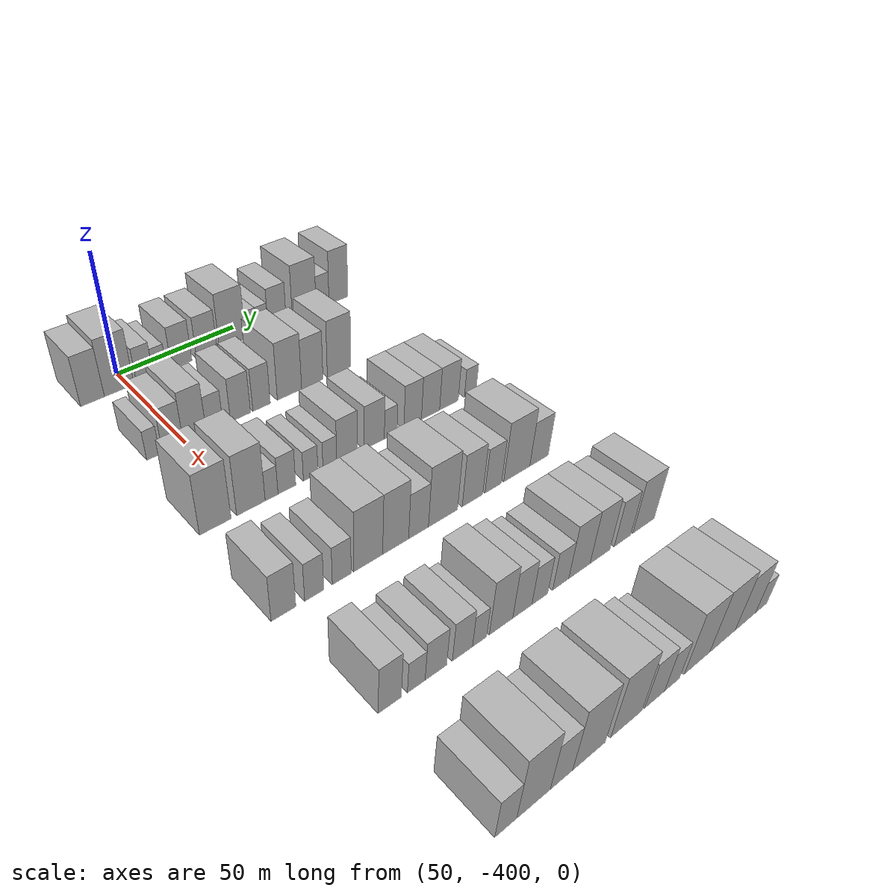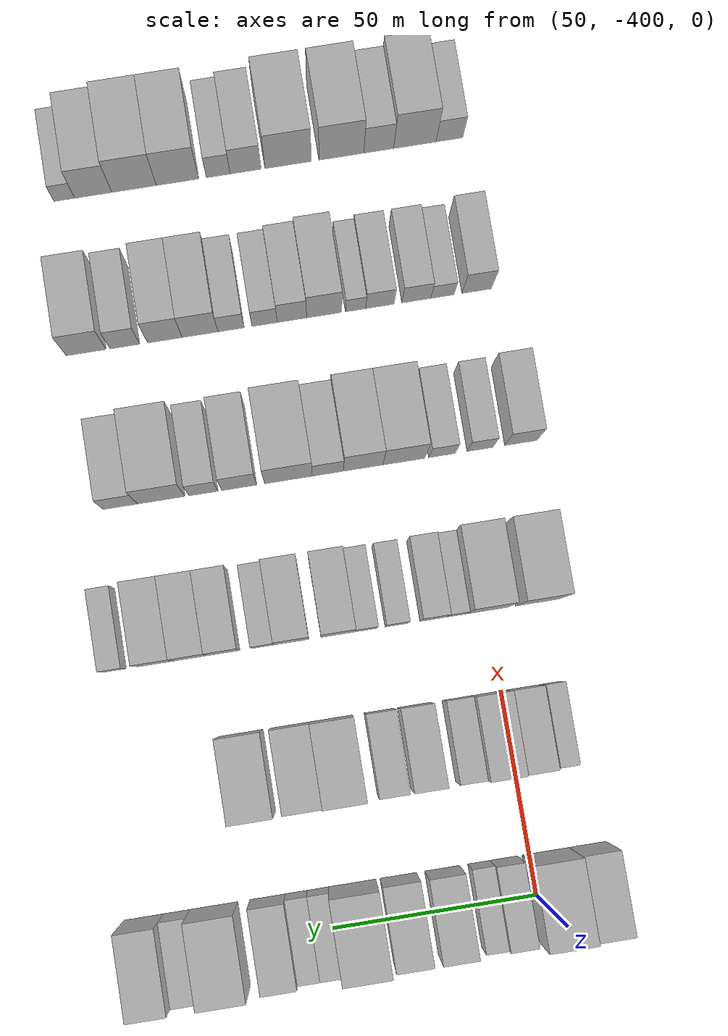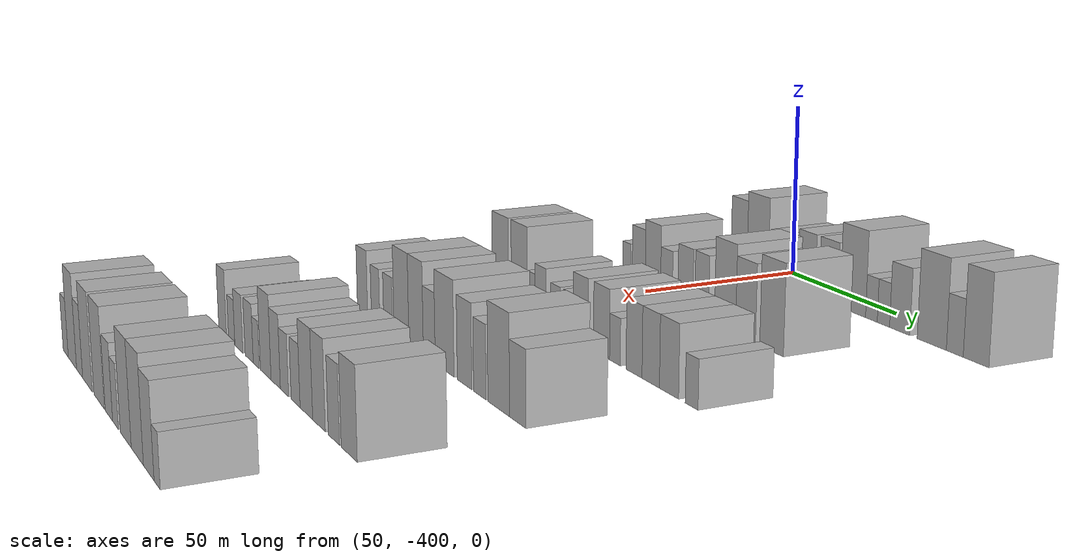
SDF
<sdf version="1.6">
 <world name="default">
  <model name="building_26">
   <static>1</static>
   <pose>50.0000 -414.3899 0 0.000000 0.000000 0.000000</pose>
   <link name="link">
    <pose>0 0 10.50 0 0 0</pose>
    <collision name="collision"><geometry><box><size>20.0000 9.1056 21.0000</size></box></geometry></collision>
    <visual name="visual">
     <cast_shadows>0</cast_shadows>
     <geometry><box><size>20.0000 9.1056 21.0000</size></box></geometry>
     <material>
      <script>
       <uri>model://HANNAS_wall/materials/scripts</uri>
       <uri>model://HANNAS_wall/materials/textures</uri>
       <name>vrc/HANNAS_wall</name>
      </script>
     </material>
    </visual>
   </link>
  </model>
  <model name="building_27">
   <static>1</static>
   <pose>50.0000 -404.0000 0 0.000000 0.000000 0.000000</pose>
   <link name="link">
    <pose>0 0 12.00 0 0 0</pose>
    <collision name="collision"><geometry><box><size>20.0000 11.6743 24.0000</size></box></geometry></collision>
    <visual name="visual">
     <cast_shadows>0</cast_shadows>
     <geometry><box><size>20.0000 11.6743 24.0000</size></box></geometry>
     <material>
      <script>
       <uri>model://HANNAS_wall/materials/scripts</uri>
       <uri>model://HANNAS_wall/materials/textures</uri>
       <name>vrc/HANNAS_wall</name>
      </script>
     </material>
    </visual>
   </link>
  </model>
  <model name="building_28">
   <static>1</static>
   <pose>50.0000 -393.7379 0 0.000000 0.000000 0.000000</pose>
   <link name="link">
    <pose>0 0 7.50 0 0 0</pose>
    <collision name="collision"><geometry><box><size>20.0000 6.8498 15.0000</size></box></geometry></collision>
    <visual name="visual">
     <cast_shadows>0</cast_shadows>
     <geometry><box><size>20.0000 6.8498 15.0000</size></box></geometry>
     <material>
      <script>
       <uri>model://HANNAS_wall/materials/scripts</uri>
       <uri>model://HANNAS_wall/materials/textures</uri>
       <name>vrc/HANNAS_wall</name>
      </script>
     </material>
    </visual>
   </link>
  </model>
  <model name="building_29">
   <static>1</static>
   <pose>50.0000 -387.5442 0 0.000000 0.000000 0.000000</pose>
   <link name="link">
    <pose>0 0 6.00 0 0 0</pose>
    <collision name="collision"><geometry><box><size>20.0000 5.5376 12.0000</size></box></geometry></collision>
    <visual name="visual">
     <cast_shadows>0</cast_shadows>
     <geometry><box><size>20.0000 5.5376 12.0000</size></box></geometry>
     <material>
      <script>
       <uri>model://HANNAS_wall/materials/scripts</uri>
       <uri>model://HANNAS_wall/materials/textures</uri>
       <name>vrc/HANNAS_wall</name>
      </script>
     </material>
    </visual>
   </link>
  </model>
  <model name="building_30">
   <static>1</static>
   <pose>50.0000 -378.4547 0 0.000000 0.000000 0.000000</pose>
   <link name="link">
    <pose>0 0 9.00 0 0 0</pose>
    <collision name="collision"><geometry><box><size>20.0000 8.6414 18.0000</size></box></geometry></collision>
    <visual name="visual">
     <cast_shadows>0</cast_shadows>
     <geometry><box><size>20.0000 8.6414 18.0000</size></box></geometry>
     <material>
      <script>
       <uri>model://HANNAS_wall/materials/scripts</uri>
       <uri>model://HANNAS_wall/materials/textures</uri>
       <name>vrc/HANNAS_wall</name>
      </script>
     </material>
    </visual>
   </link>
  </model>
  <model name="building_31">
   <static>1</static>
   <pose>50.0000 -367.6351 0 0.000000 0.000000 0.000000</pose>
   <link name="link">
    <pose>0 0 9.00 0 0 0</pose>
    <collision name="collision"><geometry><box><size>20.0000 8.9978 18.0000</size></box></geometry></collision>
    <visual name="visual">
     <cast_shadows>0</cast_shadows>
     <geometry><box><size>20.0000 8.9978 18.0000</size></box></geometry>
     <material>
      <script>
       <uri>model://HANNAS_wall/materials/scripts</uri>
       <uri>model://HANNAS_wall/materials/textures</uri>
       <name>vrc/HANNAS_wall</name>
      </script>
     </material>
    </visual>
   </link>
  </model>
  <model name="building_32">
   <static>1</static>
   <pose>50.0000 -356.2664 0 0.000000 0.000000 0.000000</pose>
   <link name="link">
    <pose>0 0 12.00 0 0 0</pose>
    <collision name="collision"><geometry><box><size>20.0000 11.7396 24.0000</size></box></geometry></collision>
    <visual name="visual">
     <cast_shadows>0</cast_shadows>
     <geometry><box><size>20.0000 11.7396 24.0000</size></box></geometry>
     <material>
      <script>
       <uri>model://HANNAS_wall/materials/scripts</uri>
       <uri>model://HANNAS_wall/materials/textures</uri>
       <name>vrc/HANNAS_wall</name>
      </script>
     </material>
    </visual>
   </link>
  </model>
  <model name="building_33">
   <static>1</static>
   <pose>50.0000 -347.7952 0 0.000000 0.000000 0.000000</pose>
   <link name="link">
    <pose>0 0 6.00 0 0 0</pose>
    <collision name="collision"><geometry><box><size>20.0000 5.2028 12.0000</size></box></geometry></collision>
    <visual name="visual">
     <cast_shadows>0</cast_shadows>
     <geometry><box><size>20.0000 5.2028 12.0000</size></box></geometry>
     <material>
      <script>
       <uri>model://HANNAS_wall/materials/scripts</uri>
       <uri>model://HANNAS_wall/materials/textures</uri>
       <name>vrc/HANNAS_wall</name>
      </script>
     </material>
    </visual>
   </link>
  </model>
  <model name="building_34">
   <static>1</static>
   <pose>50.0000 -342.5135 0 0.000000 0.000000 0.000000</pose>
   <link name="link">
    <pose>0 0 6.00 0 0 0</pose>
    <collision name="collision"><geometry><box><size>20.0000 5.3606 12.0000</size></box></geometry></collision>
    <visual name="visual">
     <cast_shadows>0</cast_shadows>
     <geometry><box><size>20.0000 5.3606 12.0000</size></box></geometry>
     <material>
      <script>
       <uri>model://HANNAS_wall/materials/scripts</uri>
       <uri>model://HANNAS_wall/materials/textures</uri>
       <name>vrc/HANNAS_wall</name>
      </script>
     </material>
    </visual>
   </link>
  </model>
  <model name="building_35">
   <static>1</static>
   <pose>50.0000 -335.5263 0 0.000000 0.000000 0.000000</pose>
   <link name="link">
    <pose>0 0 9.00 0 0 0</pose>
    <collision name="collision"><geometry><box><size>20.0000 8.6137 18.0000</size></box></geometry></collision>
    <visual name="visual">
     <cast_shadows>0</cast_shadows>
     <geometry><box><size>20.0000 8.6137 18.0000</size></box></geometry>
     <material>
      <script>
       <uri>model://HANNAS_wall/materials/scripts</uri>
       <uri>model://HANNAS_wall/materials/textures</uri>
       <name>vrc/HANNAS_wall</name>
      </script>
     </material>
    </visual>
   </link>
  </model>
  <model name="building_36">
   <static>1</static>
   <pose>50.0000 -322.3569 0 0.000000 0.000000 0.000000</pose>
   <link name="link">
    <pose>0 0 12.00 0 0 0</pose>
    <collision name="collision"><geometry><box><size>20.0000 11.7252 24.0000</size></box></geometry></collision>
    <visual name="visual">
     <cast_shadows>0</cast_shadows>
     <geometry><box><size>20.0000 11.7252 24.0000</size></box></geometry>
     <material>
      <script>
       <uri>model://HANNAS_wall/materials/scripts</uri>
       <uri>model://HANNAS_wall/materials/textures</uri>
       <name>vrc/HANNAS_wall</name>
      </script>
     </material>
    </visual>
   </link>
  </model>
  <model name="building_37">
   <static>1</static>
   <pose>50.0000 -313.2357 0 0.000000 0.000000 0.000000</pose>
   <link name="link">
    <pose>0 0 7.50 0 0 0</pose>
    <collision name="collision"><geometry><box><size>20.0000 6.5171 15.0000</size></box></geometry></collision>
    <visual name="visual">
     <cast_shadows>0</cast_shadows>
     <geometry><box><size>20.0000 6.5171 15.0000</size></box></geometry>
     <material>
      <script>
       <uri>model://HANNAS_wall/materials/scripts</uri>
       <uri>model://HANNAS_wall/materials/textures</uri>
       <name>vrc/HANNAS_wall</name>
      </script>
     </material>
    </visual>
   </link>
  </model>
  <model name="building_38">
   <static>1</static>
   <pose>50.0000 -305.1698 0 0.000000 0.000000 0.000000</pose>
   <link name="link">
    <pose>0 0 12.00 0 0 0</pose>
    <collision name="collision"><geometry><box><size>20.0000 9.6145 24.0000</size></box></geometry></collision>
    <visual name="visual">
     <cast_shadows>0</cast_shadows>
     <geometry><box><size>20.0000 9.6145 24.0000</size></box></geometry>
     <material>
      <script>
       <uri>model://HANNAS_wall/materials/scripts</uri>
       <uri>model://HANNAS_wall/materials/textures</uri>
       <name>vrc/HANNAS_wall</name>
      </script>
     </material>
    </visual>
   </link>
  </model>
  <model name="building_156">
   <static>1</static>
   <pose>90.0000 -411.9326 0 0.000000 0.000000 0.000000</pose>
   <link name="link">
    <pose>0 0 6.00 0 0 0</pose>
    <collision name="collision"><geometry><box><size>20.0000 4.8075 12.0000</size></box></geometry></collision>
    <visual name="visual">
     <cast_shadows>0</cast_shadows>
     <geometry><box><size>20.0000 4.8075 12.0000</size></box></geometry>
     <material>
      <script>
       <uri>model://HANNAS_wall/materials/scripts</uri>
       <uri>model://HANNAS_wall/materials/textures</uri>
       <name>vrc/HANNAS_wall</name>
      </script>
     </material>
    </visual>
   </link>
  </model>
  <model name="building_157">
   <static>1</static>
   <pose>90.0000 -404.6065 0 0.000000 0.000000 0.000000</pose>
   <link name="link">
    <pose>0 0 9.00 0 0 0</pose>
    <collision name="collision"><geometry><box><size>20.0000 7.8446 18.0000</size></box></geometry></collision>
    <visual name="visual">
     <cast_shadows>0</cast_shadows>
     <geometry><box><size>20.0000 7.8446 18.0000</size></box></geometry>
     <material>
      <script>
       <uri>model://HANNAS_wall/materials/scripts</uri>
       <uri>model://HANNAS_wall/materials/textures</uri>
       <name>vrc/HANNAS_wall</name>
      </script>
     </material>
    </visual>
   </link>
  </model>
  <model name="building_158">
   <static>1</static>
   <pose>90.0000 -396.2514 0 0.000000 0.000000 0.000000</pose>
   <link name="link">
    <pose>0 0 10.50 0 0 0</pose>
    <collision name="collision"><geometry><box><size>20.0000 8.8657 21.0000</size></box></geometry></collision>
    <visual name="visual">
     <cast_shadows>0</cast_shadows>
     <geometry><box><size>20.0000 8.8657 21.0000</size></box></geometry>
     <material>
      <script>
       <uri>model://HANNAS_wall/materials/scripts</uri>
       <uri>model://HANNAS_wall/materials/textures</uri>
       <name>vrc/HANNAS_wall</name>
      </script>
     </material>
    </visual>
   </link>
  </model>
  <model name="building_159">
   <static>1</static>
   <pose>90.0000 -388.4987 0 0.000000 0.000000 0.000000</pose>
   <link name="link">
    <pose>0 0 7.50 0 0 0</pose>
    <collision name="collision"><geometry><box><size>20.0000 6.6397 15.0000</size></box></geometry></collision>
    <visual name="visual">
     <cast_shadows>0</cast_shadows>
     <geometry><box><size>20.0000 6.6397 15.0000</size></box></geometry>
     <material>
      <script>
       <uri>model://HANNAS_wall/materials/scripts</uri>
       <uri>model://HANNAS_wall/materials/textures</uri>
       <name>vrc/HANNAS_wall</name>
      </script>
     </material>
    </visual>
   </link>
  </model>
  <model name="building_160">
   <static>1</static>
   <pose>90.0000 -378.1217 0 0.000000 0.000000 0.000000</pose>
   <link name="link">
    <pose>0 0 9.00 0 0 0</pose>
    <collision name="collision"><geometry><box><size>20.0000 8.1143 18.0000</size></box></geometry></collision>
    <visual name="visual">
     <cast_shadows>0</cast_shadows>
     <geometry><box><size>20.0000 8.1143 18.0000</size></box></geometry>
     <material>
      <script>
       <uri>model://HANNAS_wall/materials/scripts</uri>
       <uri>model://HANNAS_wall/materials/textures</uri>
       <name>vrc/HANNAS_wall</name>
      </script>
     </material>
    </visual>
   </link>
  </model>
  <model name="building_161">
   <static>1</static>
   <pose>90.0000 -369.4070 0 0.000000 0.000000 0.000000</pose>
   <link name="link">
    <pose>0 0 9.00 0 0 0</pose>
    <collision name="collision"><geometry><box><size>20.0000 7.3151 18.0000</size></box></geometry></collision>
    <visual name="visual">
     <cast_shadows>0</cast_shadows>
     <geometry><box><size>20.0000 7.3151 18.0000</size></box></geometry>
     <material>
      <script>
       <uri>model://HANNAS_wall/materials/scripts</uri>
       <uri>model://HANNAS_wall/materials/textures</uri>
       <name>vrc/HANNAS_wall</name>
      </script>
     </material>
    </visual>
   </link>
  </model>
  <model name="building_162">
   <static>1</static>
   <pose>90.0000 -357.4786 0 0.000000 0.000000 0.000000</pose>
   <link name="link">
    <pose>0 0 12.00 0 0 0</pose>
    <collision name="collision"><geometry><box><size>20.0000 10.5418 24.0000</size></box></geometry></collision>
    <visual name="visual">
     <cast_shadows>0</cast_shadows>
     <geometry><box><size>20.0000 10.5418 24.0000</size></box></geometry>
     <material>
      <script>
       <uri>model://HANNAS_wall/materials/scripts</uri>
       <uri>model://HANNAS_wall/materials/textures</uri>
       <name>vrc/HANNAS_wall</name>
      </script>
     </material>
    </visual>
   </link>
  </model>
  <model name="building_163">
   <static>1</static>
   <pose>90.0000 -347.4380 0 0.000000 0.000000 0.000000</pose>
   <link name="link">
    <pose>0 0 10.50 0 0 0</pose>
    <collision name="collision"><geometry><box><size>20.0000 9.5393 21.0000</size></box></geometry></collision>
    <visual name="visual">
     <cast_shadows>0</cast_shadows>
     <geometry><box><size>20.0000 9.5393 21.0000</size></box></geometry>
     <material>
      <script>
       <uri>model://HANNAS_wall/materials/scripts</uri>
       <uri>model://HANNAS_wall/materials/textures</uri>
       <name>vrc/HANNAS_wall</name>
      </script>
     </material>
    </visual>
   </link>
  </model>
  <model name="building_164">
   <static>1</static>
   <pose>90.0000 -335.2580 0 0.000000 0.000000 0.000000</pose>
   <link name="link">
    <pose>0 0 12.00 0 0 0</pose>
    <collision name="collision"><geometry><box><size>20.0000 10.8207 24.0000</size></box></geometry></collision>
    <visual name="visual">
     <cast_shadows>0</cast_shadows>
     <geometry><box><size>20.0000 10.8207 24.0000</size></box></geometry>
     <material>
      <script>
       <uri>model://HANNAS_wall/materials/scripts</uri>
       <uri>model://HANNAS_wall/materials/textures</uri>
       <name>vrc/HANNAS_wall</name>
      </script>
     </material>
    </visual>
   </link>
  </model>
  <model name="building_285">
   <static>1</static>
   <pose>130.0000 -412.5814 0 0.000000 0.000000 0.000000</pose>
   <link name="link">
    <pose>0 0 12.00 0 0 0</pose>
    <collision name="collision"><geometry><box><size>20.0000 11.0672 24.0000</size></box></geometry></collision>
    <visual name="visual">
     <cast_shadows>0</cast_shadows>
     <geometry><box><size>20.0000 11.0672 24.0000</size></box></geometry>
     <material>
      <script>
       <uri>model://HANNAS_wall/materials/scripts</uri>
       <uri>model://HANNAS_wall/materials/textures</uri>
       <name>vrc/HANNAS_wall</name>
      </script>
     </material>
    </visual>
   </link>
  </model>
  <model name="building_286">
   <static>1</static>
   <pose>130.0000 -399.8257 0 0.000000 0.000000 0.000000</pose>
   <link name="link">
    <pose>0 0 12.00 0 0 0</pose>
    <collision name="collision"><geometry><box><size>20.0000 10.4442 24.0000</size></box></geometry></collision>
    <visual name="visual">
     <cast_shadows>0</cast_shadows>
     <geometry><box><size>20.0000 10.4442 24.0000</size></box></geometry>
     <material>
      <script>
       <uri>model://HANNAS_wall/materials/scripts</uri>
       <uri>model://HANNAS_wall/materials/textures</uri>
       <name>vrc/HANNAS_wall</name>
      </script>
     </material>
    </visual>
   </link>
  </model>
  <model name="building_287">
   <static>1</static>
   <pose>130.0000 -392.1917 0 0.000000 0.000000 0.000000</pose>
   <link name="link">
    <pose>0 0 6.00 0 0 0</pose>
    <collision name="collision"><geometry><box><size>20.0000 4.8238 12.0000</size></box></geometry></collision>
    <visual name="visual">
     <cast_shadows>0</cast_shadows>
     <geometry><box><size>20.0000 4.8238 12.0000</size></box></geometry>
     <material>
      <script>
       <uri>model://HANNAS_wall/materials/scripts</uri>
       <uri>model://HANNAS_wall/materials/textures</uri>
       <name>vrc/HANNAS_wall</name>
      </script>
     </material>
    </visual>
   </link>
  </model>
  <model name="building_288">
   <static>1</static>
   <pose>130.0000 -386.3967 0 0.000000 0.000000 0.000000</pose>
   <link name="link">
    <pose>0 0 7.50 0 0 0</pose>
    <collision name="collision"><geometry><box><size>20.0000 6.7661 15.0000</size></box></geometry></collision>
    <visual name="visual">
     <cast_shadows>0</cast_shadows>
     <geometry><box><size>20.0000 6.7661 15.0000</size></box></geometry>
     <material>
      <script>
       <uri>model://HANNAS_wall/materials/scripts</uri>
       <uri>model://HANNAS_wall/materials/textures</uri>
       <name>vrc/HANNAS_wall</name>
      </script>
     </material>
    </visual>
   </link>
  </model>
  <model name="building_289">
   <static>1</static>
   <pose>130.0000 -377.1480 0 0.000000 0.000000 0.000000</pose>
   <link name="link">
    <pose>0 0 6.00 0 0 0</pose>
    <collision name="collision"><geometry><box><size>20.0000 5.7313 12.0000</size></box></geometry></collision>
    <visual name="visual">
     <cast_shadows>0</cast_shadows>
     <geometry><box><size>20.0000 5.7313 12.0000</size></box></geometry>
     <material>
      <script>
       <uri>model://HANNAS_wall/materials/scripts</uri>
       <uri>model://HANNAS_wall/materials/textures</uri>
       <name>vrc/HANNAS_wall</name>
      </script>
     </material>
    </visual>
   </link>
  </model>
  <model name="building_290">
   <static>1</static>
   <pose>130.0000 -369.4951 0 0.000000 0.000000 0.000000</pose>
   <link name="link">
    <pose>0 0 6.00 0 0 0</pose>
    <collision name="collision"><geometry><box><size>20.0000 5.5746 12.0000</size></box></geometry></collision>
    <visual name="visual">
     <cast_shadows>0</cast_shadows>
     <geometry><box><size>20.0000 5.5746 12.0000</size></box></geometry>
     <material>
      <script>
       <uri>model://HANNAS_wall/materials/scripts</uri>
       <uri>model://HANNAS_wall/materials/textures</uri>
       <name>vrc/HANNAS_wall</name>
      </script>
     </material>
    </visual>
   </link>
  </model>
  <model name="building_291">
   <static>1</static>
   <pose>130.0000 -362.4866 0 0.000000 0.000000 0.000000</pose>
   <link name="link">
    <pose>0 0 9.00 0 0 0</pose>
    <collision name="collision"><geometry><box><size>20.0000 8.4424 18.0000</size></box></geometry></collision>
    <visual name="visual">
     <cast_shadows>0</cast_shadows>
     <geometry><box><size>20.0000 8.4424 18.0000</size></box></geometry>
     <material>
      <script>
       <uri>model://HANNAS_wall/materials/scripts</uri>
       <uri>model://HANNAS_wall/materials/textures</uri>
       <name>vrc/HANNAS_wall</name>
      </script>
     </material>
    </visual>
   </link>
  </model>
  <model name="building_292">
   <static>1</static>
   <pose>130.0000 -350.9627 0 0.000000 0.000000 0.000000</pose>
   <link name="link">
    <pose>0 0 9.00 0 0 0</pose>
    <collision name="collision"><geometry><box><size>20.0000 8.6053 18.0000</size></box></geometry></collision>
    <visual name="visual">
     <cast_shadows>0</cast_shadows>
     <geometry><box><size>20.0000 8.6053 18.0000</size></box></geometry>
     <material>
      <script>
       <uri>model://HANNAS_wall/materials/scripts</uri>
       <uri>model://HANNAS_wall/materials/textures</uri>
       <name>vrc/HANNAS_wall</name>
      </script>
     </material>
    </visual>
   </link>
  </model>
  <model name="building_293">
   <static>1</static>
   <pose>130.0000 -343.8487 0 0.000000 0.000000 0.000000</pose>
   <link name="link">
    <pose>0 0 6.00 0 0 0</pose>
    <collision name="collision"><geometry><box><size>20.0000 5.6227 12.0000</size></box></geometry></collision>
    <visual name="visual">
     <cast_shadows>0</cast_shadows>
     <geometry><box><size>20.0000 5.6227 12.0000</size></box></geometry>
     <material>
      <script>
       <uri>model://HANNAS_wall/materials/scripts</uri>
       <uri>model://HANNAS_wall/materials/textures</uri>
       <name>vrc/HANNAS_wall</name>
      </script>
     </material>
    </visual>
   </link>
  </model>
  <model name="building_294">
   <static>1</static>
   <pose>130.0000 -334.0466 0 0.000000 0.000000 0.000000</pose>
   <link name="link">
    <pose>0 0 9.00 0 0 0</pose>
    <collision name="collision"><geometry><box><size>20.0000 7.9815 18.0000</size></box></geometry></collision>
    <visual name="visual">
     <cast_shadows>0</cast_shadows>
     <geometry><box><size>20.0000 7.9815 18.0000</size></box></geometry>
     <material>
      <script>
       <uri>model://HANNAS_wall/materials/scripts</uri>
       <uri>model://HANNAS_wall/materials/textures</uri>
       <name>vrc/HANNAS_wall</name>
      </script>
     </material>
    </visual>
   </link>
  </model>
  <model name="building_295">
   <static>1</static>
   <pose>130.0000 -325.8316 0 0.000000 0.000000 0.000000</pose>
   <link name="link">
    <pose>0 0 9.00 0 0 0</pose>
    <collision name="collision"><geometry><box><size>20.0000 8.4483 18.0000</size></box></geometry></collision>
    <visual name="visual">
     <cast_shadows>0</cast_shadows>
     <geometry><box><size>20.0000 8.4483 18.0000</size></box></geometry>
     <material>
      <script>
       <uri>model://HANNAS_wall/materials/scripts</uri>
       <uri>model://HANNAS_wall/materials/textures</uri>
       <name>vrc/HANNAS_wall</name>
      </script>
     </material>
    </visual>
   </link>
  </model>
  <model name="building_296">
   <static>1</static>
   <pose>130.0000 -317.1540 0 0.000000 0.000000 0.000000</pose>
   <link name="link">
    <pose>0 0 9.00 0 0 0</pose>
    <collision name="collision"><geometry><box><size>20.0000 8.9070 18.0000</size></box></geometry></collision>
    <visual name="visual">
     <cast_shadows>0</cast_shadows>
     <geometry><box><size>20.0000 8.9070 18.0000</size></box></geometry>
     <material>
      <script>
       <uri>model://HANNAS_wall/materials/scripts</uri>
       <uri>model://HANNAS_wall/materials/textures</uri>
       <name>vrc/HANNAS_wall</name>
      </script>
     </material>
    </visual>
   </link>
  </model>
  <model name="building_297">
   <static>1</static>
   <pose>130.0000 -306.8457 0 0.000000 0.000000 0.000000</pose>
   <link name="link">
    <pose>0 0 6.00 0 0 0</pose>
    <collision name="collision"><geometry><box><size>20.0000 5.7095 12.0000</size></box></geometry></collision>
    <visual name="visual">
     <cast_shadows>0</cast_shadows>
     <geometry><box><size>20.0000 5.7095 12.0000</size></box></geometry>
     <material>
      <script>
       <uri>model://HANNAS_wall/materials/scripts</uri>
       <uri>model://HANNAS_wall/materials/textures</uri>
       <name>vrc/HANNAS_wall</name>
      </script>
     </material>
    </visual>
   </link>
  </model>
  <model name="building_426">
   <static>1</static>
   <pose>170.0000 -415.3069 0 0.000000 0.000000 0.000000</pose>
   <link name="link">
    <pose>0 0 9.00 0 0 0</pose>
    <collision name="collision"><geometry><box><size>20.0000 8.1933 18.0000</size></box></geometry></collision>
    <visual name="visual">
     <cast_shadows>0</cast_shadows>
     <geometry><box><size>20.0000 8.1933 18.0000</size></box></geometry>
     <material>
      <script>
       <uri>model://HANNAS_wall/materials/scripts</uri>
       <uri>model://HANNAS_wall/materials/textures</uri>
       <name>vrc/HANNAS_wall</name>
      </script>
     </material>
    </visual>
   </link>
  </model>
  <model name="building_427">
   <static>1</static>
   <pose>170.0000 -404.9298 0 0.000000 0.000000 0.000000</pose>
   <link name="link">
    <pose>0 0 7.50 0 0 0</pose>
    <collision name="collision"><geometry><box><size>20.0000 6.5609 15.0000</size></box></geometry></collision>
    <visual name="visual">
     <cast_shadows>0</cast_shadows>
     <geometry><box><size>20.0000 6.5609 15.0000</size></box></geometry>
     <material>
      <script>
       <uri>model://HANNAS_wall/materials/scripts</uri>
       <uri>model://HANNAS_wall/materials/textures</uri>
       <name>vrc/HANNAS_wall</name>
      </script>
     </material>
    </visual>
   </link>
  </model>
  <model name="building_428">
   <static>1</static>
   <pose>170.0000 -395.2957 0 0.000000 0.000000 0.000000</pose>
   <link name="link">
    <pose>0 0 7.50 0 0 0</pose>
    <collision name="collision"><geometry><box><size>20.0000 6.7074 15.0000</size></box></geometry></collision>
    <visual name="visual">
     <cast_shadows>0</cast_shadows>
     <geometry><box><size>20.0000 6.7074 15.0000</size></box></geometry>
     <material>
      <script>
       <uri>model://HANNAS_wall/materials/scripts</uri>
       <uri>model://HANNAS_wall/materials/textures</uri>
       <name>vrc/HANNAS_wall</name>
      </script>
     </material>
    </visual>
   </link>
  </model>
  <model name="building_429">
   <static>1</static>
   <pose>170.0000 -385.6176 0 0.000000 0.000000 0.000000</pose>
   <link name="link">
    <pose>0 0 12.00 0 0 0</pose>
    <collision name="collision"><geometry><box><size>20.0000 10.6488 24.0000</size></box></geometry></collision>
    <visual name="visual">
     <cast_shadows>0</cast_shadows>
     <geometry><box><size>20.0000 10.6488 24.0000</size></box></geometry>
     <material>
      <script>
       <uri>model://HANNAS_wall/materials/scripts</uri>
       <uri>model://HANNAS_wall/materials/textures</uri>
       <name>vrc/HANNAS_wall</name>
      </script>
     </material>
    </visual>
   </link>
  </model>
  <model name="building_430">
   <static>1</static>
   <pose>170.0000 -375.3055 0 0.000000 0.000000 0.000000</pose>
   <link name="link">
    <pose>0 0 12.00 0 0 0</pose>
    <collision name="collision"><geometry><box><size>20.0000 9.9753 24.0000</size></box></geometry></collision>
    <visual name="visual">
     <cast_shadows>0</cast_shadows>
     <geometry><box><size>20.0000 9.9753 24.0000</size></box></geometry>
     <material>
      <script>
       <uri>model://HANNAS_wall/materials/scripts</uri>
       <uri>model://HANNAS_wall/materials/textures</uri>
       <name>vrc/HANNAS_wall</name>
      </script>
     </material>
    </visual>
   </link>
  </model>
  <model name="building_431">
   <static>1</static>
   <pose>170.0000 -366.3891 0 0.000000 0.000000 0.000000</pose>
   <link name="link">
    <pose>0 0 9.00 0 0 0</pose>
    <collision name="collision"><geometry><box><size>20.0000 7.8576 18.0000</size></box></geometry></collision>
    <visual name="visual">
     <cast_shadows>0</cast_shadows>
     <geometry><box><size>20.0000 7.8576 18.0000</size></box></geometry>
     <material>
      <script>
       <uri>model://HANNAS_wall/materials/scripts</uri>
       <uri>model://HANNAS_wall/materials/textures</uri>
       <name>vrc/HANNAS_wall</name>
      </script>
     </material>
    </visual>
   </link>
  </model>
  <model name="building_432">
   <static>1</static>
   <pose>170.0000 -356.4742 0 0.000000 0.000000 0.000000</pose>
   <link name="link">
    <pose>0 0 12.00 0 0 0</pose>
    <collision name="collision"><geometry><box><size>20.0000 11.9720 24.0000</size></box></geometry></collision>
    <visual name="visual">
     <cast_shadows>0</cast_shadows>
     <geometry><box><size>20.0000 11.9720 24.0000</size></box></geometry>
     <material>
      <script>
       <uri>model://HANNAS_wall/materials/scripts</uri>
       <uri>model://HANNAS_wall/materials/textures</uri>
       <name>vrc/HANNAS_wall</name>
      </script>
     </material>
    </visual>
   </link>
  </model>
  <model name="building_433">
   <static>1</static>
   <pose>170.0000 -344.1083 0 0.000000 0.000000 0.000000</pose>
   <link name="link">
    <pose>0 0 10.50 0 0 0</pose>
    <collision name="collision"><geometry><box><size>20.0000 8.7598 21.0000</size></box></geometry></collision>
    <visual name="visual">
     <cast_shadows>0</cast_shadows>
     <geometry><box><size>20.0000 8.7598 21.0000</size></box></geometry>
     <material>
      <script>
       <uri>model://HANNAS_wall/materials/scripts</uri>
       <uri>model://HANNAS_wall/materials/textures</uri>
       <name>vrc/HANNAS_wall</name>
      </script>
     </material>
    </visual>
   </link>
  </model>
  <model name="building_434">
   <static>1</static>
   <pose>170.0000 -335.0778 0 0.000000 0.000000 0.000000</pose>
   <link name="link">
    <pose>0 0 9.00 0 0 0</pose>
    <collision name="collision"><geometry><box><size>20.0000 7.3012 18.0000</size></box></geometry></collision>
    <visual name="visual">
     <cast_shadows>0</cast_shadows>
     <geometry><box><size>20.0000 7.3012 18.0000</size></box></geometry>
     <material>
      <script>
       <uri>model://HANNAS_wall/materials/scripts</uri>
       <uri>model://HANNAS_wall/materials/textures</uri>
       <name>vrc/HANNAS_wall</name>
      </script>
     </material>
    </visual>
   </link>
  </model>
  <model name="building_435">
   <static>1</static>
   <pose>170.0000 -324.4492 0 0.000000 0.000000 0.000000</pose>
   <link name="link">
    <pose>0 0 12.00 0 0 0</pose>
    <collision name="collision"><geometry><box><size>20.0000 11.9560 24.0000</size></box></geometry></collision>
    <visual name="visual">
     <cast_shadows>0</cast_shadows>
     <geometry><box><size>20.0000 11.9560 24.0000</size></box></geometry>
     <material>
      <script>
       <uri>model://HANNAS_wall/materials/scripts</uri>
       <uri>model://HANNAS_wall/materials/textures</uri>
       <name>vrc/HANNAS_wall</name>
      </script>
     </material>
    </visual>
   </link>
  </model>
  <model name="building_436">
   <static>1</static>
   <pose>170.0000 -314.1354 0 0.000000 0.000000 0.000000</pose>
   <link name="link">
    <pose>0 0 9.00 0 0 0</pose>
    <collision name="collision"><geometry><box><size>20.0000 8.6716 18.0000</size></box></geometry></collision>
    <visual name="visual">
     <cast_shadows>0</cast_shadows>
     <geometry><box><size>20.0000 8.6716 18.0000</size></box></geometry>
     <material>
      <script>
       <uri>model://HANNAS_wall/materials/scripts</uri>
       <uri>model://HANNAS_wall/materials/textures</uri>
       <name>vrc/HANNAS_wall</name>
      </script>
     </material>
    </visual>
   </link>
  </model>
  <model name="building_569">
   <static>1</static>
   <pose>210.0000 -410.9122 0 0.000000 0.000000 0.000000</pose>
   <link name="link">
    <pose>0 0 9.00 0 0 0</pose>
    <collision name="collision"><geometry><box><size>20.0000 7.5175 18.0000</size></box></geometry></collision>
    <visual name="visual">
     <cast_shadows>0</cast_shadows>
     <geometry><box><size>20.0000 7.5175 18.0000</size></box></geometry>
     <material>
      <script>
       <uri>model://HANNAS_wall/materials/scripts</uri>
       <uri>model://HANNAS_wall/materials/textures</uri>
       <name>vrc/HANNAS_wall</name>
      </script>
     </material>
    </visual>
   </link>
  </model>
  <model name="building_570">
   <static>1</static>
   <pose>210.0000 -402.1767 0 0.000000 0.000000 0.000000</pose>
   <link name="link">
    <pose>0 0 6.00 0 0 0</pose>
    <collision name="collision"><geometry><box><size>20.0000 5.9536 12.0000</size></box></geometry></collision>
    <visual name="visual">
     <cast_shadows>0</cast_shadows>
     <geometry><box><size>20.0000 5.9536 12.0000</size></box></geometry>
     <material>
      <script>
       <uri>model://HANNAS_wall/materials/scripts</uri>
       <uri>model://HANNAS_wall/materials/textures</uri>
       <name>vrc/HANNAS_wall</name>
      </script>
     </material>
    </visual>
   </link>
  </model>
  <model name="building_571">
   <static>1</static>
   <pose>210.0000 -395.4804 0 0.000000 0.000000 0.000000</pose>
   <link name="link">
    <pose>0 0 7.50 0 0 0</pose>
    <collision name="collision"><geometry><box><size>20.0000 7.4391 15.0000</size></box></geometry></collision>
    <visual name="visual">
     <cast_shadows>0</cast_shadows>
     <geometry><box><size>20.0000 7.4391 15.0000</size></box></geometry>
     <material>
      <script>
       <uri>model://HANNAS_wall/materials/scripts</uri>
       <uri>model://HANNAS_wall/materials/textures</uri>
       <name>vrc/HANNAS_wall</name>
      </script>
     </material>
    </visual>
   </link>
  </model>
  <model name="building_572">
   <static>1</static>
   <pose>210.0000 -386.1468 0 0.000000 0.000000 0.000000</pose>
   <link name="link">
    <pose>0 0 7.50 0 0 0</pose>
    <collision name="collision"><geometry><box><size>20.0000 7.2280 15.0000</size></box></geometry></collision>
    <visual name="visual">
     <cast_shadows>0</cast_shadows>
     <geometry><box><size>20.0000 7.2280 15.0000</size></box></geometry>
     <material>
      <script>
       <uri>model://HANNAS_wall/materials/scripts</uri>
       <uri>model://HANNAS_wall/materials/textures</uri>
       <name>vrc/HANNAS_wall</name>
      </script>
     </material>
    </visual>
   </link>
  </model>
  <model name="building_573">
   <static>1</static>
   <pose>210.0000 -379.9415 0 0.000000 0.000000 0.000000</pose>
   <link name="link">
    <pose>0 0 6.00 0 0 0</pose>
    <collision name="collision"><geometry><box><size>20.0000 5.1826 12.0000</size></box></geometry></collision>
    <visual name="visual">
     <cast_shadows>0</cast_shadows>
     <geometry><box><size>20.0000 5.1826 12.0000</size></box></geometry>
     <material>
      <script>
       <uri>model://HANNAS_wall/materials/scripts</uri>
       <uri>model://HANNAS_wall/materials/textures</uri>
       <name>vrc/HANNAS_wall</name>
      </script>
     </material>
    </visual>
   </link>
  </model>
  <model name="building_574">
   <static>1</static>
   <pose>210.0000 -371.8974 0 0.000000 0.000000 0.000000</pose>
   <link name="link">
    <pose>0 0 10.50 0 0 0</pose>
    <collision name="collision"><geometry><box><size>20.0000 8.9056 21.0000</size></box></geometry></collision>
    <visual name="visual">
     <cast_shadows>0</cast_shadows>
     <geometry><box><size>20.0000 8.9056 21.0000</size></box></geometry>
     <material>
      <script>
       <uri>model://HANNAS_wall/materials/scripts</uri>
       <uri>model://HANNAS_wall/materials/textures</uri>
       <name>vrc/HANNAS_wall</name>
      </script>
     </material>
    </visual>
   </link>
  </model>
  <model name="building_575">
   <static>1</static>
   <pose>210.0000 -363.6965 0 0.000000 0.000000 0.000000</pose>
   <link name="link">
    <pose>0 0 9.00 0 0 0</pose>
    <collision name="collision"><geometry><box><size>20.0000 7.4961 18.0000</size></box></geometry></collision>
    <visual name="visual">
     <cast_shadows>0</cast_shadows>
     <geometry><box><size>20.0000 7.4961 18.0000</size></box></geometry>
     <material>
      <script>
       <uri>model://HANNAS_wall/materials/scripts</uri>
       <uri>model://HANNAS_wall/materials/textures</uri>
       <name>vrc/HANNAS_wall</name>
      </script>
     </material>
    </visual>
   </link>
  </model>
  <model name="building_576">
   <static>1</static>
   <pose>210.0000 -356.7411 0 0.000000 0.000000 0.000000</pose>
   <link name="link">
    <pose>0 0 7.50 0 0 0</pose>
    <collision name="collision"><geometry><box><size>20.0000 6.4147 15.0000</size></box></geometry></collision>
    <visual name="visual">
     <cast_shadows>0</cast_shadows>
     <geometry><box><size>20.0000 6.4147 15.0000</size></box></geometry>
     <material>
      <script>
       <uri>model://HANNAS_wall/materials/scripts</uri>
       <uri>model://HANNAS_wall/materials/textures</uri>
       <name>vrc/HANNAS_wall</name>
      </script>
     </material>
    </visual>
   </link>
  </model>
  <model name="building_577">
   <static>1</static>
   <pose>210.0000 -348.1874 0 0.000000 0.000000 0.000000</pose>
   <link name="link">
    <pose>0 0 7.50 0 0 0</pose>
    <collision name="collision"><geometry><box><size>20.0000 6.6928 15.0000</size></box></geometry></collision>
    <visual name="visual">
     <cast_shadows>0</cast_shadows>
     <geometry><box><size>20.0000 6.6928 15.0000</size></box></geometry>
     <material>
      <script>
       <uri>model://HANNAS_wall/materials/scripts</uri>
       <uri>model://HANNAS_wall/materials/textures</uri>
       <name>vrc/HANNAS_wall</name>
      </script>
     </material>
    </visual>
   </link>
  </model>
  <model name="building_578">
   <static>1</static>
   <pose>210.0000 -340.2743 0 0.000000 0.000000 0.000000</pose>
   <link name="link">
    <pose>0 0 10.50 0 0 0</pose>
    <collision name="collision"><geometry><box><size>20.0000 9.1333 21.0000</size></box></geometry></collision>
    <visual name="visual">
     <cast_shadows>0</cast_shadows>
     <geometry><box><size>20.0000 9.1333 21.0000</size></box></geometry>
     <material>
      <script>
       <uri>model://HANNAS_wall/materials/scripts</uri>
       <uri>model://HANNAS_wall/materials/textures</uri>
       <name>vrc/HANNAS_wall</name>
      </script>
     </material>
    </visual>
   </link>
  </model>
  <model name="building_579">
   <static>1</static>
   <pose>210.0000 -331.3085 0 0.000000 0.000000 0.000000</pose>
   <link name="link">
    <pose>0 0 10.50 0 0 0</pose>
    <collision name="collision"><geometry><box><size>20.0000 8.7984 21.0000</size></box></geometry></collision>
    <visual name="visual">
     <cast_shadows>0</cast_shadows>
     <geometry><box><size>20.0000 8.7984 21.0000</size></box></geometry>
     <material>
      <script>
       <uri>model://HANNAS_wall/materials/scripts</uri>
       <uri>model://HANNAS_wall/materials/textures</uri>
       <name>vrc/HANNAS_wall</name>
      </script>
     </material>
    </visual>
   </link>
  </model>
  <model name="building_580">
   <static>1</static>
   <pose>210.0000 -321.1526 0 0.000000 0.000000 0.000000</pose>
   <link name="link">
    <pose>0 0 9.00 0 0 0</pose>
    <collision name="collision"><geometry><box><size>20.0000 7.5134 18.0000</size></box></geometry></collision>
    <visual name="visual">
     <cast_shadows>0</cast_shadows>
     <geometry><box><size>20.0000 7.5134 18.0000</size></box></geometry>
     <material>
      <script>
       <uri>model://HANNAS_wall/materials/scripts</uri>
       <uri>model://HANNAS_wall/materials/textures</uri>
       <name>vrc/HANNAS_wall</name>
      </script>
     </material>
    </visual>
   </link>
  </model>
  <model name="building_581">
   <static>1</static>
   <pose>210.0000 -311.3208 0 0.000000 0.000000 0.000000</pose>
   <link name="link">
    <pose>0 0 10.50 0 0 0</pose>
    <collision name="collision"><geometry><box><size>20.0000 10.1501 21.0000</size></box></geometry></collision>
    <visual name="visual">
     <cast_shadows>0</cast_shadows>
     <geometry><box><size>20.0000 10.1501 21.0000</size></box></geometry>
     <material>
      <script>
       <uri>model://HANNAS_wall/materials/scripts</uri>
       <uri>model://HANNAS_wall/materials/textures</uri>
       <name>vrc/HANNAS_wall</name>
      </script>
     </material>
    </visual>
   </link>
  </model>
  <model name="building_711">
   <static>1</static>
   <pose>250.0000 -410.7157 0 0.000000 0.000000 0.000000</pose>
   <link name="link">
    <pose>0 0 7.50 0 0 0</pose>
    <collision name="collision"><geometry><box><size>20.0000 6.9219 15.0000</size></box></geometry></collision>
    <visual name="visual">
     <cast_shadows>0</cast_shadows>
     <geometry><box><size>20.0000 6.9219 15.0000</size></box></geometry>
     <material>
      <script>
       <uri>model://HANNAS_wall/materials/scripts</uri>
       <uri>model://HANNAS_wall/materials/textures</uri>
       <name>vrc/HANNAS_wall</name>
      </script>
     </material>
    </visual>
   </link>
  </model>
  <model name="building_712">
   <static>1</static>
   <pose>250.0000 -401.7745 0 0.000000 0.000000 0.000000</pose>
   <link name="link">
    <pose>0 0 12.00 0 0 0</pose>
    <collision name="collision"><geometry><box><size>20.0000 10.9605 24.0000</size></box></geometry></collision>
    <visual name="visual">
     <cast_shadows>0</cast_shadows>
     <geometry><box><size>20.0000 10.9605 24.0000</size></box></geometry>
     <material>
      <script>
       <uri>model://HANNAS_wall/materials/scripts</uri>
       <uri>model://HANNAS_wall/materials/textures</uri>
       <name>vrc/HANNAS_wall</name>
      </script>
     </material>
    </visual>
   </link>
  </model>
  <model name="building_713">
   <static>1</static>
   <pose>250.0000 -392.4457 0 0.000000 0.000000 0.000000</pose>
   <link name="link">
    <pose>0 0 9.00 0 0 0</pose>
    <collision name="collision"><geometry><box><size>20.0000 7.6971 18.0000</size></box></geometry></collision>
    <visual name="visual">
     <cast_shadows>0</cast_shadows>
     <geometry><box><size>20.0000 7.6971 18.0000</size></box></geometry>
     <material>
      <script>
       <uri>model://HANNAS_wall/materials/scripts</uri>
       <uri>model://HANNAS_wall/materials/textures</uri>
       <name>vrc/HANNAS_wall</name>
      </script>
     </material>
    </visual>
   </link>
  </model>
  <model name="building_714">
   <static>1</static>
   <pose>250.0000 -382.7909 0 0.000000 0.000000 0.000000</pose>
   <link name="link">
    <pose>0 0 12.00 0 0 0</pose>
    <collision name="collision"><geometry><box><size>20.0000 11.6124 24.0000</size></box></geometry></collision>
    <visual name="visual">
     <cast_shadows>0</cast_shadows>
     <geometry><box><size>20.0000 11.6124 24.0000</size></box></geometry>
     <material>
      <script>
       <uri>model://HANNAS_wall/materials/scripts</uri>
       <uri>model://HANNAS_wall/materials/textures</uri>
       <name>vrc/HANNAS_wall</name>
      </script>
     </material>
    </visual>
   </link>
  </model>
  <model name="building_715">
   <static>1</static>
   <pose>250.0000 -369.0256 0 0.000000 0.000000 0.000000</pose>
   <link name="link">
    <pose>0 0 12.00 0 0 0</pose>
    <collision name="collision"><geometry><box><size>20.0000 11.9181 24.0000</size></box></geometry></collision>
    <visual name="visual">
     <cast_shadows>0</cast_shadows>
     <geometry><box><size>20.0000 11.9181 24.0000</size></box></geometry>
     <material>
      <script>
       <uri>model://HANNAS_wall/materials/scripts</uri>
       <uri>model://HANNAS_wall/materials/textures</uri>
       <name>vrc/HANNAS_wall</name>
      </script>
     </material>
    </visual>
   </link>
  </model>
  <model name="building_716">
   <static>1</static>
   <pose>250.0000 -358.0877 0 0.000000 0.000000 0.000000</pose>
   <link name="link">
    <pose>0 0 9.00 0 0 0</pose>
    <collision name="collision"><geometry><box><size>20.0000 7.9577 18.0000</size></box></geometry></collision>
    <visual name="visual">
     <cast_shadows>0</cast_shadows>
     <geometry><box><size>20.0000 7.9577 18.0000</size></box></geometry>
     <material>
      <script>
       <uri>model://HANNAS_wall/materials/scripts</uri>
       <uri>model://HANNAS_wall/materials/textures</uri>
       <name>vrc/HANNAS_wall</name>
      </script>
     </material>
    </visual>
   </link>
  </model>
  <model name="building_717">
   <static>1</static>
   <pose>250.0000 -351.0642 0 0.000000 0.000000 0.000000</pose>
   <link name="link">
    <pose>0 0 7.50 0 0 0</pose>
    <collision name="collision"><geometry><box><size>20.0000 6.0894 15.0000</size></box></geometry></collision>
    <visual name="visual">
     <cast_shadows>0</cast_shadows>
     <geometry><box><size>20.0000 6.0894 15.0000</size></box></geometry>
     <material>
      <script>
       <uri>model://HANNAS_wall/materials/scripts</uri>
       <uri>model://HANNAS_wall/materials/textures</uri>
       <name>vrc/HANNAS_wall</name>
      </script>
     </material>
    </visual>
   </link>
  </model>
  <model name="building_718">
   <static>1</static>
   <pose>250.0000 -340.5696 0 0.000000 0.000000 0.000000</pose>
   <link name="link">
    <pose>0 0 12.00 0 0 0</pose>
    <collision name="collision"><geometry><box><size>20.0000 10.8998 24.0000</size></box></geometry></collision>
    <visual name="visual">
     <cast_shadows>0</cast_shadows>
     <geometry><box><size>20.0000 10.8998 24.0000</size></box></geometry>
     <material>
      <script>
       <uri>model://HANNAS_wall/materials/scripts</uri>
       <uri>model://HANNAS_wall/materials/textures</uri>
       <name>vrc/HANNAS_wall</name>
      </script>
     </material>
    </visual>
   </link>
  </model>
  <model name="building_719">
   <static>1</static>
   <pose>250.0000 -329.3827 0 0.000000 0.000000 0.000000</pose>
   <link name="link">
    <pose>0 0 12.00 0 0 0</pose>
    <collision name="collision"><geometry><box><size>20.0000 11.4739 24.0000</size></box></geometry></collision>
    <visual name="visual">
     <cast_shadows>0</cast_shadows>
     <geometry><box><size>20.0000 11.4739 24.0000</size></box></geometry>
     <material>
      <script>
       <uri>model://HANNAS_wall/materials/scripts</uri>
       <uri>model://HANNAS_wall/materials/textures</uri>
       <name>vrc/HANNAS_wall</name>
      </script>
     </material>
    </visual>
   </link>
  </model>
  <model name="building_720">
   <static>1</static>
   <pose>250.0000 -318.8939 0 0.000000 0.000000 0.000000</pose>
   <link name="link">
    <pose>0 0 10.50 0 0 0</pose>
    <collision name="collision"><geometry><box><size>20.0000 9.5038 21.0000</size></box></geometry></collision>
    <visual name="visual">
     <cast_shadows>0</cast_shadows>
     <geometry><box><size>20.0000 9.5038 21.0000</size></box></geometry>
     <material>
      <script>
       <uri>model://HANNAS_wall/materials/scripts</uri>
       <uri>model://HANNAS_wall/materials/textures</uri>
       <name>vrc/HANNAS_wall</name>
      </script>
     </material>
    </visual>
   </link>
  </model>
  <model name="building_721">
   <static>1</static>
   <pose>250.0000 -311.4791 0 0.000000 0.000000 0.000000</pose>
   <link name="link">
    <pose>0 0 6.00 0 0 0</pose>
    <collision name="collision"><geometry><box><size>20.0000 5.3258 12.0000</size></box></geometry></collision>
    <visual name="visual">
     <cast_shadows>0</cast_shadows>
     <geometry><box><size>20.0000 5.3258 12.0000</size></box></geometry>
     <material>
      <script>
       <uri>model://HANNAS_wall/materials/scripts</uri>
       <uri>model://HANNAS_wall/materials/textures</uri>
       <name>vrc/HANNAS_wall</name>
      </script>
     </material>
    </visual>
   </link>
  </model>
 </world>
</sdf>
